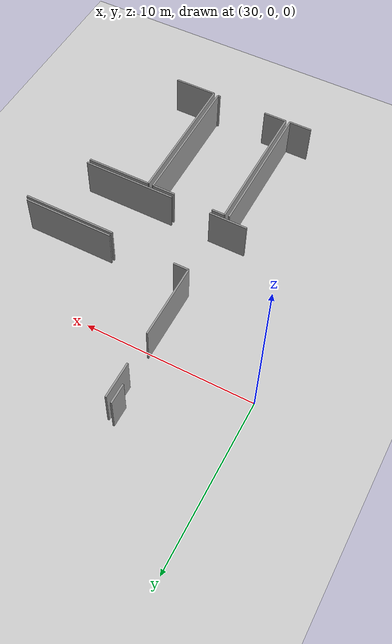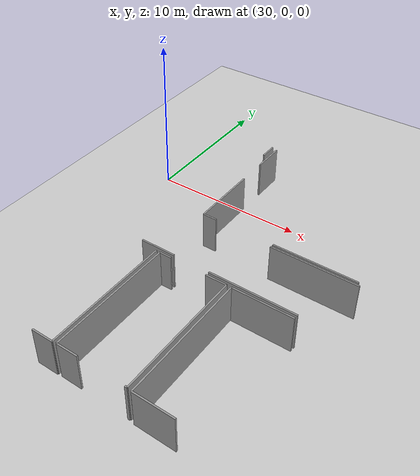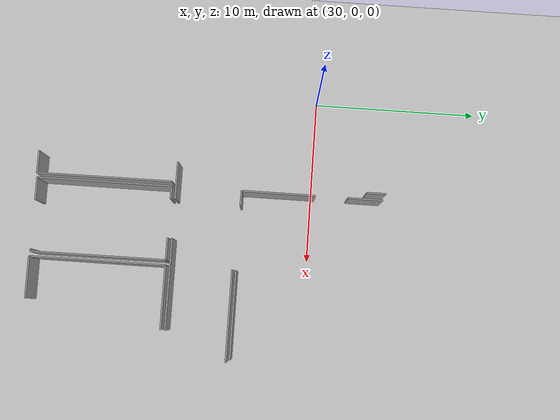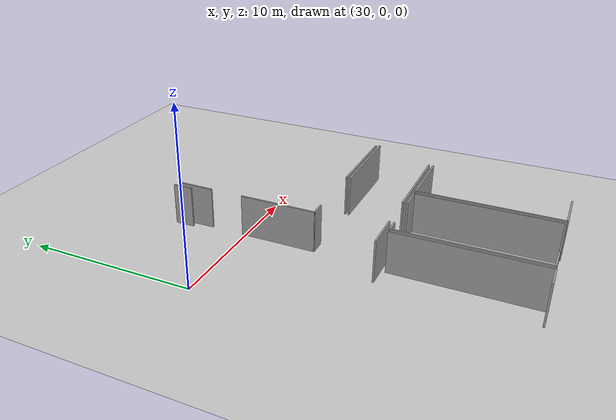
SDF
<sdf version="1.6">
 <world name="default">
  <model name="ground_plane">
   <static>1</static>
   <link name="link">
    <collision name="collision">
     <geometry><plane><normal>0 0 1</normal><size>100 100</size></plane></geometry>
     <surface><friction><ode><mu>100</mu><mu2>50</mu2></ode></friction></surface>
    </collision>
    <visual name="visual">
     <cast_shadows>0</cast_shadows>
     <geometry><plane><normal>0 0 1</normal><size>100 100</size></plane></geometry>
     <material>
      <script><uri>file://media/materials/scripts/gazebo.material</uri><name>Gazebo/Grey</name></script>
     </material>
    </visual>
   </link>
  </model>
  <model name="50041173">
   <static>1</static>
   <link name="Wall_128">
    <collision name="Wall_128_Collision">
     <geometry><box><size>5.55751605778 0.1 2.5</size></box></geometry>
     <pose>2.77875802889 0 1.25 0 0 0</pose>
    </collision>
    <visual name="Wall_128_Visual">
     <pose>2.77875802889 0 1.25 0 0 0</pose>
     <geometry><box><size>5.55751605778 0.1 2.5</size></box></geometry>
     <material>
      <script><uri>file://media/materials/scripts/gazebo.material</uri><name>Gazebo/Grey</name></script>
      <ambient>1 1 1 1</ambient>
     </material>
    </visual>
    <pose>110.468151007 -25.056107035 0 0 0 3.14159265359</pose>
   </link>
   <link name="Wall_129">
    <collision name="Wall_129_Collision">
     <geometry><box><size>2.28490187616 0.1 2.5</size></box></geometry>
     <pose>1.14245093808 0 1.25 0 0 0</pose>
    </collision>
    <visual name="Wall_129_Visual">
     <pose>1.14245093808 0 1.25 0 0 0</pose>
     <geometry><box><size>2.28490187616 0.1 2.5</size></box></geometry>
     <material>
      <script><uri>file://media/materials/scripts/gazebo.material</uri><name>Gazebo/Grey</name></script>
      <ambient>1 1 1 1</ambient>
     </material>
    </visual>
    <pose>102.530655767 -25.056107035 0 0 0 3.14159265359</pose>
   </link>
   <link name="Wall_160">
    <collision name="Wall_160_Collision">
     <geometry><box><size>5.55738911879 0.1 2.5</size></box></geometry>
     <pose>2.77869455939 0 1.25 0 0 0</pose>
    </collision>
    <visual name="Wall_160_Visual">
     <pose>2.77869455939 0 1.25 0 0 0</pose>
     <geometry><box><size>5.55738911879 0.1 2.5</size></box></geometry>
     <material>
      <script><uri>file://media/materials/scripts/gazebo.material</uri><name>Gazebo/Grey</name></script>
      <ambient>1 1 1 1</ambient>
     </material>
    </visual>
    <pose>106.570616162 -21.2900809871 0 0 0 0.0</pose>
   </link>
   <link name="Wall_164">
    <collision name="Wall_164_Collision">
     <geometry><box><size>2.54030313032 0.1 2.5</size></box></geometry>
     <pose>1.27015156516 0 1.25 0 0 0</pose>
    </collision>
    <visual name="Wall_164_Visual">
     <pose>1.27015156516 0 1.25 0 0 0</pose>
     <geometry><box><size>2.54030313032 0.1 2.5</size></box></geometry>
     <material>
      <script><uri>file://media/materials/scripts/gazebo.material</uri><name>Gazebo/Grey</name></script>
      <ambient>1 1 1 1</ambient>
     </material>
    </visual>
    <pose>109.116504608 -33.578664094 0 0 0 3.14159265359</pose>
   </link>
   <link name="Wall_165">
    <collision name="Wall_165_Collision">
     <geometry><box><size>8.25205006474 0.1 2.5</size></box></geometry>
     <pose>4.12602503237 0 1.25 0 0 0</pose>
    </collision>
    <visual name="Wall_165_Visual">
     <pose>4.12602503237 0 1.25 0 0 0</pose>
     <geometry><box><size>8.25205006474 0.1 2.5</size></box></geometry>
     <material>
      <script><uri>file://media/materials/scripts/gazebo.material</uri><name>Gazebo/Grey</name></script>
      <ambient>1 1 1 1</ambient>
     </material>
    </visual>
    <pose>106.576201478 -33.578664094 0 0 0 1.57079632679</pose>
   </link>
   <link name="Wall_166">
    <collision name="Wall_166_Collision">
     <geometry><box><size>3.86846581533 0.1 2.5</size></box></geometry>
     <pose>1.93423290766 0 1.25 0 0 0</pose>
    </collision>
    <visual name="Wall_166_Visual">
     <pose>1.93423290766 0 1.25 0 0 0</pose>
     <geometry><box><size>3.86846581533 0.1 2.5</size></box></geometry>
     <material>
      <script><uri>file://media/materials/scripts/gazebo.material</uri><name>Gazebo/Grey</name></script>
      <ambient>1 1 1 1</ambient>
     </material>
    </visual>
    <pose>106.576201478 -25.3266140293 0 0 0 0.0</pose>
   </link>
   <link name="Wall_169">
    <collision name="Wall_169_Collision">
     <geometry><box><size>0.153596181675 0.1 2.5</size></box></geometry>
     <pose>0.0767980908375 0 1.25 0 0 0</pose>
    </collision>
    <visual name="Wall_169_Visual">
     <pose>0.0767980908375 0 1.25 0 0 0</pose>
     <geometry><box><size>0.153596181675 0.1 2.5</size></box></geometry>
     <material>
      <script><uri>file://media/materials/scripts/gazebo.material</uri><name>Gazebo/Grey</name></script>
      <ambient>1 1 1 1</ambient>
     </material>
    </visual>
    <pose>106.283226281 -33.5177333773 0 0 0 3.14159265359</pose>
   </link>
   <link name="Wall_170">
    <collision name="Wall_170_Collision">
     <geometry><box><size>1.38211175709 0.1 2.5</size></box></geometry>
     <pose>0.691055878545 0 1.25 0 0 0</pose>
    </collision>
    <visual name="Wall_170_Visual">
     <pose>0.691055878545 0 1.25 0 0 0</pose>
     <geometry><box><size>1.38211175709 0.1 2.5</size></box></geometry>
     <material>
      <script><uri>file://media/materials/scripts/gazebo.material</uri><name>Gazebo/Grey</name></script>
      <ambient>1 1 1 1</ambient>
     </material>
    </visual>
    <pose>103.134885374 -33.5177333773 0 0 0 3.14159265359</pose>
   </link>
   <link name="Wall_171">
    <collision name="Wall_171_Collision">
     <geometry><box><size>8.19111934804 0.1 2.5</size></box></geometry>
     <pose>4.09555967402 0 1.25 0 0 0</pose>
    </collision>
    <visual name="Wall_171_Visual">
     <pose>4.09555967402 0 1.25 0 0 0</pose>
     <geometry><box><size>8.19111934804 0.1 2.5</size></box></geometry>
     <material>
      <script><uri>file://media/materials/scripts/gazebo.material</uri><name>Gazebo/Grey</name></script>
      <ambient>1 1 1 1</ambient>
     </material>
    </visual>
    <pose>101.752773617 -33.5177333773 0 0 0 1.57079632679</pose>
   </link>
   <link name="Wall_172">
    <collision name="Wall_172_Collision">
     <geometry><box><size>0.773693163066 0.1 2.5</size></box></geometry>
     <pose>0.386846581533 0 1.25 0 0 0</pose>
    </collision>
    <visual name="Wall_172_Visual">
     <pose>0.386846581533 0 1.25 0 0 0</pose>
     <geometry><box><size>0.773693163066 0.1 2.5</size></box></geometry>
     <material>
      <script><uri>file://media/materials/scripts/gazebo.material</uri><name>Gazebo/Grey</name></script>
      <ambient>1 1 1 1</ambient>
     </material>
    </visual>
    <pose>101.752773617 -25.3266140293 0 0 0 0.0</pose>
   </link>
   <link name="Wall_173">
    <collision name="Wall_173_Collision">
     <geometry><box><size>1.36878316281 0.1 2.5</size></box></geometry>
     <pose>0.684391581406 0 1.25 0 0 0</pose>
    </collision>
    <visual name="Wall_173_Visual">
     <pose>0.684391581406 0 1.25 0 0 0</pose>
     <geometry><box><size>1.36878316281 0.1 2.5</size></box></geometry>
     <material>
      <script><uri>file://media/materials/scripts/gazebo.material</uri><name>Gazebo/Grey</name></script>
      <ambient>1 1 1 1</ambient>
     </material>
    </visual>
    <pose>104.903907182 -25.3266140293 0 0 0 0.0</pose>
   </link>
   <link name="Wall_174">
    <collision name="Wall_174_Collision">
     <geometry><box><size>8.19112612403 0.1 2.5</size></box></geometry>
     <pose>4.09556306202 0 1.25 0 0 0</pose>
    </collision>
    <visual name="Wall_174_Visual">
     <pose>4.09556306202 0 1.25 0 0 0</pose>
     <geometry><box><size>8.19112612403 0.1 2.5</size></box></geometry>
     <material>
      <script><uri>file://media/materials/scripts/gazebo.material</uri><name>Gazebo/Grey</name></script>
      <ambient>1 1 1 1</ambient>
     </material>
    </visual>
    <pose>106.272690345 -25.3266140293 0 0 0 -1.56951006418</pose>
   </link>
   <link name="Wall_175">
    <collision name="Wall_175_Collision">
     <geometry><box><size>1.37259133261 0.1 2.5</size></box></geometry>
     <pose>0.686295666303 0 1.25 0 0 0</pose>
    </collision>
    <visual name="Wall_175_Visual">
     <pose>0.686295666303 0 1.25 0 0 0</pose>
     <geometry><box><size>1.37259133261 0.1 2.5</size></box></geometry>
     <material>
      <script><uri>file://media/materials/scripts/gazebo.material</uri><name>Gazebo/Grey</name></script>
      <ambient>1 1 1 1</ambient>
     </material>
    </visual>
    <pose>101.493564193 -33.5560689533 0 0 0 3.14159265359</pose>
   </link>
   <link name="Wall_180">
    <collision name="Wall_180_Collision">
     <geometry><box><size>8.22947724644 0.1 2.5</size></box></geometry>
     <pose>4.11473862322 0 1.25 0 0 0</pose>
    </collision>
    <visual name="Wall_180_Visual">
     <pose>4.11473862322 0 1.25 0 0 0</pose>
     <geometry><box><size>8.22947724644 0.1 2.5</size></box></geometry>
     <material>
      <script><uri>file://media/materials/scripts/gazebo.material</uri><name>Gazebo/Grey</name></script>
      <ambient>1 1 1 1</ambient>
     </material>
    </visual>
    <pose>101.474396405 -25.3266140293 0 0 0 -1.56846716241</pose>
   </link>
   <link name="Wall_347">
    <collision name="Wall_347_Collision">
     <geometry><box><size>1.16999669959 0.1 2.5</size></box></geometry>
     <pose>0.584998349793 0 1.25 0 0 0</pose>
    </collision>
    <visual name="Wall_347_Visual">
     <pose>0.584998349793 0 1.25 0 0 0</pose>
     <geometry><box><size>1.16999669959 0.1 2.5</size></box></geometry>
     <material>
      <script><uri>file://media/materials/scripts/gazebo.material</uri><name>Gazebo/Grey</name></script>
      <ambient>1 1 1 1</ambient>
     </material>
    </visual>
    <pose>101.360659067 -13.4670847191 0 0 0 1.57079632679</pose>
   </link>
   <link name="Wall_354">
    <collision name="Wall_354_Collision">
     <geometry><box><size>5.37129655488 0.1 2.5</size></box></geometry>
     <pose>2.68564827744 0 1.25 0 0 0</pose>
    </collision>
    <visual name="Wall_354_Visual">
     <pose>2.68564827744 0 1.25 0 0 0</pose>
     <geometry><box><size>5.37129655488 0.1 2.5</size></box></geometry>
     <material>
      <script><uri>file://media/materials/scripts/gazebo.material</uri><name>Gazebo/Grey</name></script>
      <ambient>1 1 1 1</ambient>
     </material>
    </visual>
    <pose>111.969331539 -21.0662875422 0 0 0 3.14159265359</pose>
   </link>
   <link name="Wall_355">
    <collision name="Wall_355_Collision">
     <geometry><box><size>0.905201959938 0.1 2.5</size></box></geometry>
     <pose>0.452600979969 0 1.25 0 0 0</pose>
    </collision>
    <visual name="Wall_355_Visual">
     <pose>0.452600979969 0 1.25 0 0 0</pose>
     <geometry><box><size>0.905201959938 0.1 2.5</size></box></geometry>
     <material>
      <script><uri>file://media/materials/scripts/gazebo.material</uri><name>Gazebo/Grey</name></script>
      <ambient>1 1 1 1</ambient>
     </material>
    </visual>
    <pose>102.663180076 -21.0662875422 0 0 0 3.14159265359</pose>
   </link>
   <link name="Wall_356">
    <collision name="Wall_356_Collision">
     <geometry><box><size>4.51433141232 0.1 2.5</size></box></geometry>
     <pose>2.25716570616 0 1.25 0 0 0</pose>
    </collision>
    <visual name="Wall_356_Visual">
     <pose>2.25716570616 0 1.25 0 0 0</pose>
     <geometry><box><size>4.51433141232 0.1 2.5</size></box></geometry>
     <material>
      <script><uri>file://media/materials/scripts/gazebo.material</uri><name>Gazebo/Grey</name></script>
      <ambient>1 1 1 1</ambient>
     </material>
    </visual>
    <pose>101.757978116 -21.0662875422 0 0 0 1.57079632679</pose>
   </link>
   <link name="Wall_357">
    <collision name="Wall_357_Collision">
     <geometry><box><size>2.14095305796 0.1 2.5</size></box></geometry>
     <pose>1.07047652898 0 1.25 0 0 0</pose>
    </collision>
    <visual name="Wall_357_Visual">
     <pose>1.07047652898 0 1.25 0 0 0</pose>
     <geometry><box><size>2.14095305796 0.1 2.5</size></box></geometry>
     <material>
      <script><uri>file://media/materials/scripts/gazebo.material</uri><name>Gazebo/Grey</name></script>
      <ambient>1 1 1 1</ambient>
     </material>
    </visual>
    <pose>101.757978116 -14.5995074767 0 0 0 1.57079632679</pose>
   </link>
   <pose>-65.65 16.778664094 0 0 0 0</pose>
  </model>
 </world>
</sdf>
